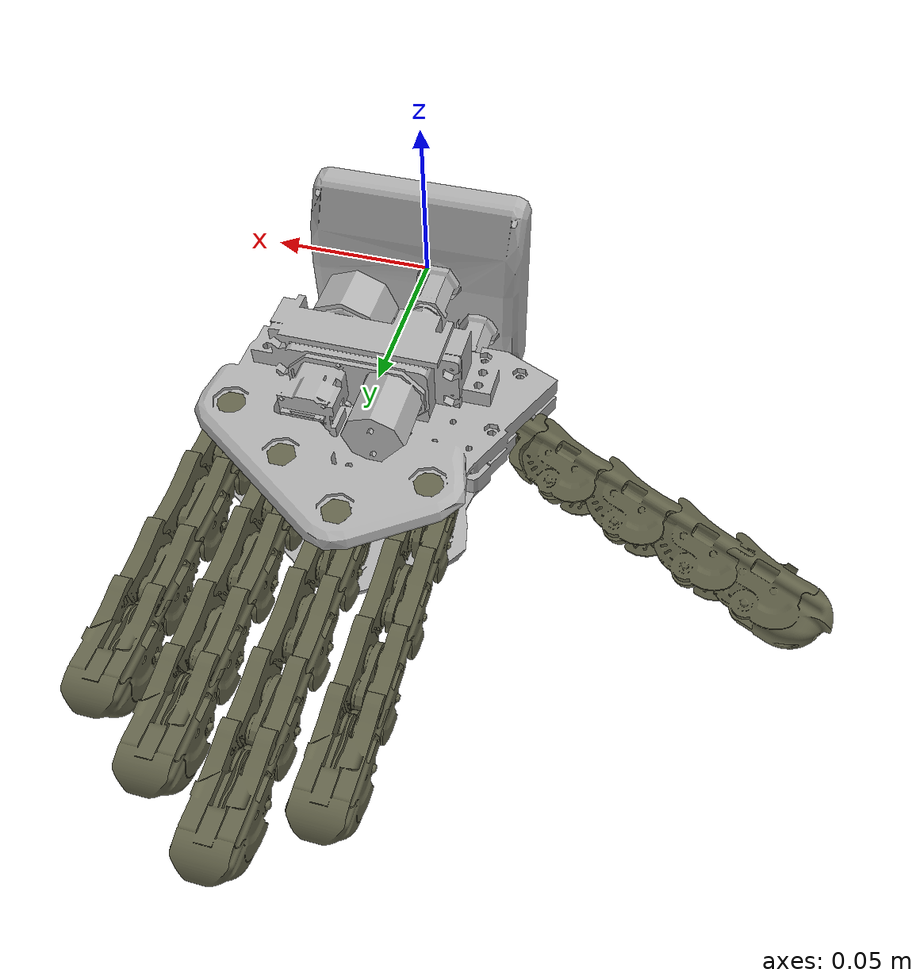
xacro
<?xml version="1.0"?>
<robot xmlns:xacro="http://ros.org/wiki/xacro" name="complete_soft_hand">

  <xacro:include filename="$(find complete_soft_hand)/model/complete_soft_hand.urdf.xacro"/>

  <link name="world">
  </link>

  <xacro:complete_soft_hand parent="world" name="hand">
    <origin xyz="0 0 0" rpy="0 0 0"/>
  </xacro:complete_soft_hand>

</robot>

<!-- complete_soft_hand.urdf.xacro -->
<robot xmlns:xacro="http://ros.org/wiki/xacro">

	<xacro:include filename="$(find complete_soft_hand)/model/materials.urdf.xacro"/>

	<xacro:property name="pi" value="3.1415926535897931" />
	<xacro:property name="inner_lb" value="0" />
	<xacro:property name="inner_ub" value="45" />
	<xacro:property name="middle_lb" value="0" />
	<xacro:property name="middle_ub" value="45" />
	<xacro:property name="outer_lb" value="0" />
	<xacro:property name="outer_ub" value="45" />
	<xacro:property name="velocity" value="100" />
	<xacro:property name="effort" value="100" />

	<!-- Declaration of single finger that we can replicate in another position -->
	<!-- We suppose that all fingers are equal -->

	<xacro:macro name="soft_finger" params="parent name position orientation">
		<!-- macro for one finger -->

		<!-- abductor joint between palm_link and finger_abd_link - fake between palm and proximal -->
		<joint name="${name}_abd_joint" type="revolute">
			<origin xyz="${position}" rpy="${orientation}" />
			<parent link="${parent}"/>
			<child link="${name}_knuckle_link"/>
			<axis xyz="0 0 1" />
			<limit lower="${inner_lb *pi/180}" upper="${inner_ub *pi/180}" effort="${effort}" velocity="${velocity}"/>
		</joint>

		<link name="${name}_knuckle_link">
			<visual>
				<origin xyz="0 0 0" rpy="0 0 0" />
				<geometry>
					<mesh filename="package://complete_soft_hand/meshes/phalanx_prossimal_injection.stl" scale=" .001 .001 .001" />
				</geometry>
				<material name="DarkGolden" />
			</visual>
		</link>

		<!-- PHALANGE -->
		<!-- immaginary link-->
		<!-- joint and link FAKE 1-->
		<joint name="${name}_fake_joint1" type="revolute">
			<origin xyz="-0.009 0 0" rpy="0 0 0" />
			<parent link="${name}_knuckle_link"/>
			<child link="${name}_fake_link1"/>
			<axis xyz="0 1 0" />
			<limit lower="${inner_lb *pi/180}" upper="${inner_ub *pi/180}" effort="${effort}" velocity="${velocity}"/>
		</joint>

		<link name="${name}_fake_link1">
		</link>
		<!-- end immaginary link-->

		<!-- abductor joint between palm_link and finger_abd_link - fake between palm and proximal -->
		<joint name="${name}_inner_joint" type="revolute">
			<origin xyz="-0.013 0 0" rpy="0 0 0" />
			<parent link="${name}_fake_link1"/>
			<child link="${name}_proximal_link"/>
			<axis xyz="0 1 0" />
			<mimic joint="${name}_fake_joint1" multiplier="1" />
			<limit lower="${middle_lb *pi/180}" upper="${middle_ub *pi/180}" effort="${effort}" velocity="${velocity}"/>
		</joint>

		<link name="${name}_proximal_link">
			<visual>
				<origin xyz="0 0 0" rpy="0 0 0" />
				<geometry>
					<mesh filename="package://complete_soft_hand/meshes/phalanx_short_injection.stl" scale=" .001 .001 .001" />
				</geometry>
				<material name="DarkGolden" />
			</visual>
		</link>

		<!-- LITTLE PHALANGE -->
		<!-- immaginary link-->
		<!-- joint and link FAKE 2-->
		<joint name="${name}_fake_joint2" type="revolute">
			<origin xyz="-0.009 0 0" rpy="0 0 0" />
			<parent link="${name}_proximal_link"/>
			<child link="${name}_fake_link2"/>
			<axis xyz="0 1 0" />
			<limit lower="${inner_lb *pi/180}" upper="${inner_ub *pi/180}" effort="${effort}" velocity="${velocity}"/>
		</joint>

		<link name="${name}_fake_link2">
		</link>
		<!-- end immaginary link-->

		<joint name="${name}_middle_joint" type="revolute">
			<origin xyz="-0.013 0 0" rpy="0 0 0" />
			<parent link="${name}_fake_link2"/>
			<child link="${name}_middle_link"/>
			<axis xyz="0 1 0" />
			<mimic joint="${name}_fake_joint2" multiplier="1" />
			<limit lower="${outer_lb *pi/180}" upper="${outer_ub *pi/180}" effort="${effort}" velocity="${velocity}"/>
		</joint>
		<link name="${name}_middle_link">
			<visual>
				<origin xyz="0 0 0" rpy="0 0 0" />
				<geometry>
					<mesh filename="package://complete_soft_hand/meshes/phalanx_short_injection.stl" scale=" .001 .001 .001" />
				</geometry>
				<material name="DarkGolden" />
			</visual>
		</link>

		<!-- BABY PHALANGE -->
		<!-- immaginary link-->
		<!-- joint and link FAKE 3-->
		<joint name="${name}_fake_joint3" type="revolute">
			<origin xyz="-0.009 0 0" rpy="0 0 0" />
			<parent link="${name}_middle_link"/>
			<child link="${name}_fake_link3"/>
			<axis xyz="0 1 0" />
			<limit lower="${inner_lb *pi/180}" upper="${inner_ub *pi/180}" effort="${effort}" velocity="${velocity}"/>
		</joint>

		<link name="${name}_fake_link3">
		</link>
		<!-- end immaginary link-->

		<joint name="${name}_outer_joint" type="revolute">
			<origin xyz="-0.013 0 0" rpy="0 0 0" />
			<parent link="${name}_fake_link3"/>
			<child link="${name}_distal_link"/>
			<axis xyz="0 1 0" />
			<mimic joint="${name}_fake_joint3" multiplier="1" />
			<limit lower="${inner_lb *pi/180}" upper="${inner_ub *pi/180}" effort="${effort}" velocity="${velocity}"/>
		</joint>
		<link name="${name}_distal_link">
			<visual>
				<origin xyz="0 0 0" rpy="0 0 0" />
				<geometry>
					<mesh filename="package://complete_soft_hand/meshes/phalanx_distal_out_no_ati.stl" scale=" .001 .001 .001" />
				</geometry>
				<material name="DarkGolden" />
			</visual>
		</link>
		<!-- end BABY PHALANGE -->
	</xacro:macro>

	<xacro:macro name="thumb_finger" params="parent name position orientation">
		<!-- macro for one finger -->

		<!-- abductor joint between palm_link and finger_abd_link - fake between palm and proximal -->
		<joint name="${name}_abd_joint" type="revolute">
			<origin xyz="${position}" rpy="${orientation}" />
			<parent link="${parent}"/>
			<child link="${name}_knuckle_link"/>
			<axis xyz="0 1 0" />
			<limit lower="${-2*inner_ub *pi/180}" upper="${inner_lb *pi/180}" effort="${effort}" velocity="${velocity}"/>
		</joint>

		<link name="${name}_knuckle_link">
			<visual>
				<origin xyz="0 0 0" rpy="0 0 0" />
				<geometry>
					<mesh filename="package://complete_soft_hand/meshes/phalanx_thumb_injection.stl" scale=" .001 .001 .001" />
				</geometry>
				<material name="DarkGolden" />
			</visual>
		</link>

		<!-- PHALANGE -->
		<!-- immaginary link-->
		<!-- joint and link FAKE 1-->
		<joint name="${name}_fake_joint1" type="revolute">
			<origin xyz="-0.0225 0 -0.0033" rpy="-1.9974238811 0 0" />
			<parent link="${name}_knuckle_link"/>
			<child link="${name}_fake_link1"/>
			<axis xyz="0 1 0" />
			<limit lower="${inner_lb *pi/180}" upper="${inner_ub *pi/180}" effort="${effort}" velocity="${velocity}"/>
		</joint>

		<link name="${name}_fake_link1">
		</link>
		<!-- end immaginary link-->

		<!-- abductor joint between palm_link and finger_abd_link - fake between palm and proximal -->
		<joint name="${name}_inner_joint" type="revolute">
			<origin xyz="-0.013 0 0" rpy="0 0 0" />
			<parent link="${name}_fake_link1"/>
			<child link="${name}_proximal_link"/>
			<axis xyz="0 1 0" />
			<mimic joint="${name}_fake_joint1" multiplier="1" />
			<limit lower="${middle_lb *pi/180}" upper="${middle_ub *pi/180}" effort="${effort}" velocity="${velocity}"/>
		</joint>

		<link name="${name}_proximal_link">
			<visual>
				<origin xyz="0 0 0" rpy="0 0 0" />
				<geometry>
					<mesh filename="package://complete_soft_hand/meshes/phalanx_short_injection.stl" scale=" .001 .001 .001" />
				</geometry>
				<material name="DarkGolden" />
			</visual>
		</link>

		<!-- LITTLE PHALANGE -->
		<!-- immaginary link-->
		<!-- joint and link FAKE 2-->
		<joint name="${name}_fake_joint2" type="revolute">
			<origin xyz="-0.009 0 0" rpy="0 0 0" />
			<parent link="${name}_proximal_link"/>
			<child link="${name}_fake_link2"/>
			<axis xyz="0 1 0" />
			<limit lower="${inner_lb *pi/180}" upper="${inner_ub *pi/180}" effort="${effort}" velocity="${velocity}"/>
		</joint>

		<link name="${name}_fake_link2">
		</link>
		<!-- end immaginary link-->

		<joint name="${name}_middle_joint" type="revolute">
			<origin xyz="-0.013 0 0" rpy="0 0 0" />
			<parent link="${name}_fake_link2"/>
			<child link="${name}_middle_link"/>
			<axis xyz="0 1 0" />
			<mimic joint="${name}_fake_joint2" multiplier="1" />
			<limit lower="${outer_lb *pi/180}" upper="${outer_ub *pi/180}" effort="${effort}" velocity="${velocity}"/>
		</joint>
		<link name="${name}_middle_link">
			<visual>
				<origin xyz="0 0 0" rpy="0 0 0" />
				<geometry>
					<mesh filename="package://complete_soft_hand/meshes/phalanx_short_injection.stl" scale=" .001 .001 .001" />
				</geometry>
				<material name="DarkGolden" />
			</visual>
		</link>

		<!-- BABY PHALANGE -->
		<!-- immaginary link-->
		<!-- joint and link FAKE 3-->
		<joint name="${name}_fake_joint3" type="revolute">
			<origin xyz="-0.009 0 0.0" rpy="0 0 0" />
			<parent link="${name}_middle_link"/>
			<child link="${name}_fake_link3"/>
			<axis xyz="0 1 0" />
			<limit lower="${inner_lb *pi/180}" upper="${inner_ub *pi/180}" effort="${effort}" velocity="${velocity}"/>
		</joint>

		<link name="${name}_fake_link3">
		</link>
		<!-- end immaginary link-->

		<joint name="${name}_outer_joint" type="revolute">
			<origin xyz="-0.013 0 0" rpy="0 0 0" />
			<parent link="${name}_fake_link3"/>
			<child link="${name}_distal_link"/>
			<axis xyz="0 1 0" />
			<mimic joint="${name}_fake_joint3" multiplier="1" />
			<limit lower="${inner_lb *pi/180}" upper="${inner_ub *pi/180}" effort="${effort}" velocity="${velocity}"/>
		</joint>
		<link name="${name}_distal_link">
			<visual>
				<origin xyz="0 0 0" rpy="0 0 0" />
				<geometry>
					<mesh filename="package://complete_soft_hand/meshes/phalanx_distal_out_no_ati.stl" scale=" .001 .001 .001" />
				</geometry>
				<material name="DarkGolden" />
			</visual>
		</link>

		<!-- end BABY PHALANGE -->
	</xacro:macro>

	<xacro:macro name="complete_soft_hand" params="parent name *origin">
		<!-- macro for the hand -->

		<joint name="${name}_palm_joint" type="fixed" >
			<origin xyz="0 0 0" rpy="0 0 0" />
			<parent link="${parent}" />
			<child link="${name}_palm_link" />
		</joint>

		<link name="${name}_palm_link">
			<visual>
				<origin xyz="0 0 0" rpy="0 0 0" />
				<geometry>
					<mesh filename="package://complete_soft_hand/meshes/palm_hand.stl" scale=" .001 .001 .001" />
				</geometry>
				<material name="LightGrey" />
			</visual>
		</link>

		<!-- macro for each finger -->
		<xacro:soft_finger parent="${name}_palm_link" name="${name}_index" position="-0.0285 0.0943918 0.00205" orientation="${180*pi/180} 0 ${-90*pi/180}" />
		<xacro:soft_finger parent="${name}_palm_link" name="${name}_middle" position="-0.009 0.107892 0.00205" orientation="${180*pi/180} 0 ${-90*pi/180}" />
		<xacro:soft_finger parent="${name}_palm_link" name="${name}_ring" position="0.0105 0.0943918 0.00205" orientation="${180*pi/180} 0 ${-90*pi/180}" />
		<xacro:soft_finger parent="${name}_palm_link" name="${name}_little" position="0.030 0.0808918 0.00205" orientation="${180*pi/180} 0 ${-90*pi/180}" />
		<xacro:thumb_finger parent="${name}_palm_link" name="${name}_thumb" position="-0.0418769 0.0538740 -0.00691972	" orientation="0 0 -0.43633181" />

	</xacro:macro>

</robot>

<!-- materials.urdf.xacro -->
<robot>

	<material name="LightGrey">
		<color rgba="0.7 0.7 0.7 1.0"/>
	</material>

	<material name="DarkGrey">
		<color rgba="0.4 0.4 0.4 1.0"/>
	</material>

	<material name="Black">
		<color rgba="0.0 0.0 0.0 1.0"/>
	</material>

	<material name="DarkGolden">
		<color rgba="0.4 0.4 0.3 1.0"/>
	</material>

	<material name="Blue">
		<color rgba="0.0 0.0 0.8 0.9"/>
	</material>

	<material name="LightBlue">
		<color rgba="0.0 0.4 1.0 0.5"/>
	</material>

</robot>
